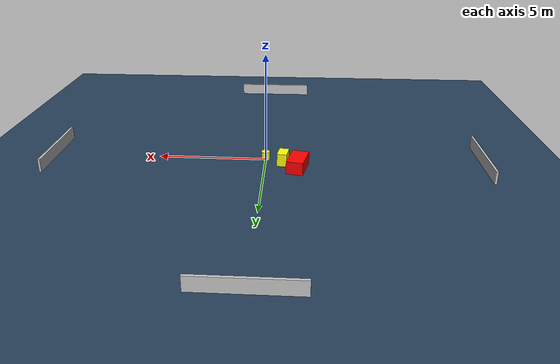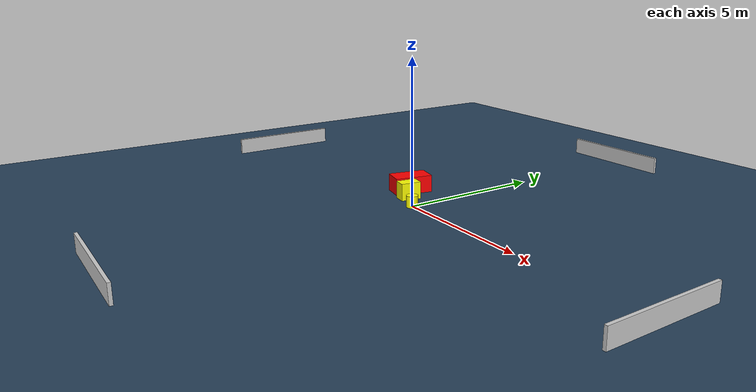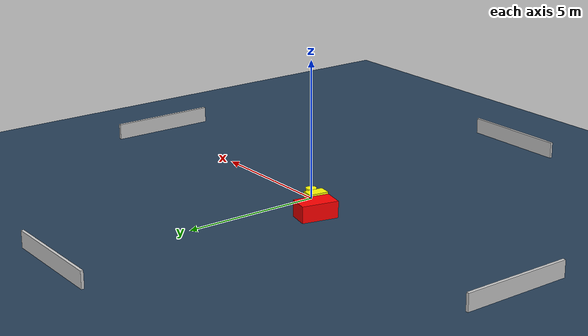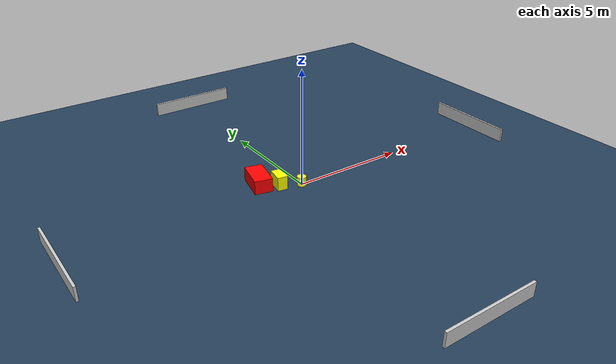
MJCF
<?xml version="1.0" ?>
<mujoco model="generated_environment">
  <option timestep="0.01" integrator="RK4" cone="elliptic"/>
  <default>
    <geom density="1"/>
  </default>
  <asset>
    <texture builtin="gradient" height="3072" name="skybox" rgb1="0.3 0.5 0.7" rgb2="0 0 0" type="skybox" width="512"/>
    <texture builtin="checker" height="300" name="groundplane" rgb1="0.2 0.3 0.4" rgb2="0.1 0.2 0.3" type="2d" width="300"/>
    <material name="groundplane" reflectance="0.2" texrepeat="5 5" texture="groundplane"/>
  </asset>
  <worldbody>
    <light dir="0 0 -1" directional="true" pos="0 0 1.5"/>
    <geom condim="3" friction="0.5 0.005 0.001" material="groundplane" name="floor" pos="0 0 0" size="0 0 0.05" type="plane"/>
    <body name="walls">
      <geom name="wall_1" condim="4" pos="-10.0 0.0 0.3" rgba="0.800000011920929 0.800000011920929 0.800000011920929 1.0" size="0.05 2.0 0.3" type="box"/>
      <geom name="wall_2" condim="4" pos="10.0 0.0 0.3" rgba="0.800000011920929 0.800000011920929 0.800000011920929 1.0" size="0.05 2.0 0.3" type="box"/>
      <geom name="wall_3" condim="4" pos="0.0 -10.0 0.3" rgba="0.800000011920929 0.800000011920929 0.800000011920929 1.0" size="2.0 0.05 0.3" type="box"/>
      <geom name="wall_4" condim="4" pos="0.0 10.0 0.3" rgba="0.800000011920929 0.800000011920929 0.800000011920929 1.0" size="2.0 0.05 0.3" type="box"/>
    </body>
    <body name="robot">
      <joint name="joint_x" type="slide" pos="0 0 0" axis="1 0 0"/>
      <joint name="joint_y" type="slide" pos="0 0 0" axis="0 1 0"/>
      <geom name="robot" type="cylinder" pos="0.0 0.0 0.2" size="0.2 0.2 0.0" mass="5.0" friction="1.0 0.005 0.0001" condim="4" rgba="1.0 1.0 0.0 1.0"/>
    </body>
    <body name="obstacle_1_movable">
      <geom name="obstacle_1_movable" condim="4" pos="-0.8323789418725623 0.42071166453689335 0.3" euler="0 0 81.2941406135974" friction="0.0 0.005 0.001" rgba="1.0 1.0 0.0 1.0" size="0.3567082153086971 0.2210150985016507 0.3" type="box" mass="0.1"/>
      <joint type="free"/>
    </body>
    <body name="obstacle_2_static">
      <geom name="obstacle_2_static" condim="4" pos="-1.5066630196270658 0.948976441149585 0.3" euler="0 0 77.71204024039505" friction="0.0 0.005 0.001" rgba="1.0 0.0 0.0 1.0" size="0.6649558195390812 0.3829459771429754 0.3" type="box"/>
    </body>
  </worldbody>
  <actuator>
    <motor name="actuator_x" joint="joint_x" gear="1" ctrlrange="-1 1"/>
    <motor name="actuator_y" joint="joint_y" gear="1" ctrlrange="-1 1"/>
  </actuator>
</mujoco>
